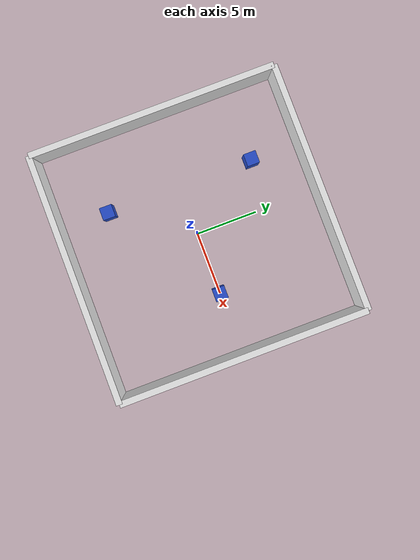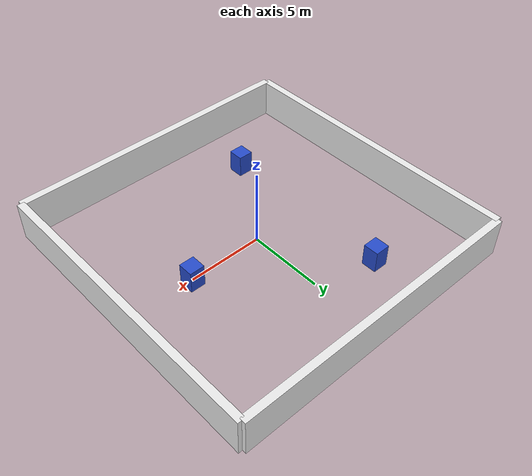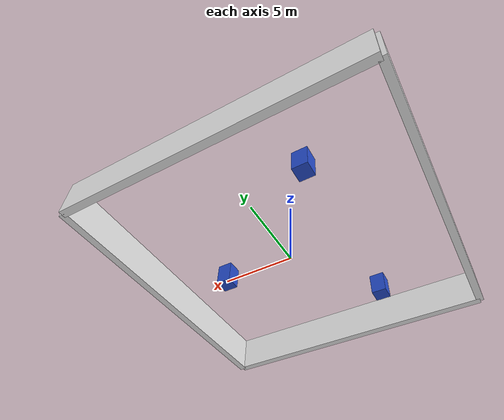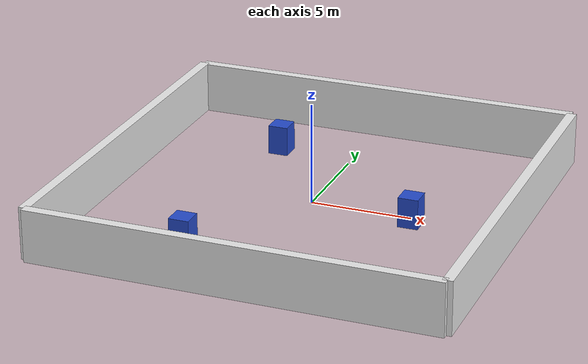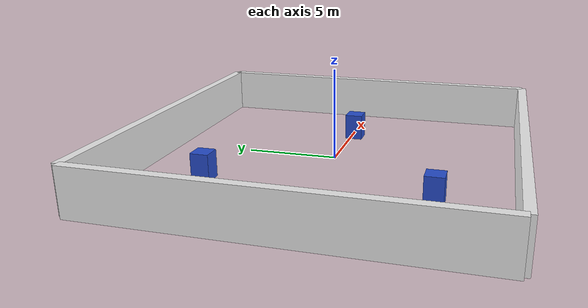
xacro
<?xml version="1.0"?>

<robot name="demo-1">

	<!-- dummy_link -->
	<link name="dummy_link">
		<inertial>
			<origin xyz="0 0 0" />
			<mass value="5.0" />
			<inertia ixx="0.0" ixy="0.0" ixz="0.0" iyy="0.0" iyz="0.0" izz="0.0" />
		</inertial>
		<visual>
			<origin xyz="0 0 0" />
			<geometry>
				<box size="0.00 0.00 0.00" />
			</geometry>
		</visual>
		<collision>
			<origin xyz="0 0 0" />
			<geometry>
				<box size="0.00 0.00 0.00" />
			</geometry>
		</collision>
	</link>

<!-- walls -->

	<!-- north_wall -->
	<link name="north_wall">
		<inertial>
			<origin xyz="0 0 0" />
			<mass value="5.0" />
			<inertia ixx="0.0" ixy="0.0" ixz="0.0" iyy="0.0" iyz="0.0" izz="0.0" />
		</inertial>
		<visual>
			<origin xyz="0 0 0" />
			<geometry>
				<box size="20 0.50 2.60" />
			</geometry>
		</visual>
		<collision>
			<origin xyz="0 0 0" />
			<geometry>
				<box size="20.02 0.53 2.62" />
			</geometry>
		</collision>
	</link>

	<joint name="joint_north_wall" type="fixed">
		<origin xyz="0 10 1" rpy="0 0 0" />
		<parent link="dummy_link" />
		<child link="north_wall" />
	</joint>

	<!-- east_wall -->
	<link name="east_wall">
		<inertial>
			<origin xyz="0 0 0" />
			<mass value="5.0" />
			<inertia ixx="0.0" ixy="0.0" ixz="0.0" iyy="0.0" iyz="0.0" izz="0.0" />
		</inertial>
		<visual>
			<origin xyz="0 0 0" />
			<geometry>
				<box size="0.50 20 2.60" />
			</geometry>
		</visual>
		<collision>
			<origin xyz="0 0 0" />
			<geometry>
				<box size="0.53 20.02 2.62" />
			</geometry>
		</collision>
	</link>

	<joint name="joint_east_wall" type="fixed">
		<origin xyz="10 0 1" rpy="0 0 0" />
		<parent link="dummy_link" />
		<child link="east_wall" />
	</joint>

	<!-- south_wall -->
	<link name="south_wall">
		<inertial>
			<origin xyz="0 0 0" />
			<mass value="5.0" />
			<inertia ixx="0.0" ixy="0.0" ixz="0.0" iyy="0.0" iyz="0.0" izz="0.0" />
		</inertial>
		<visual>
			<origin xyz="0 0 0" />
			<geometry>
				<box size="20 0.50 2.60" />
			</geometry>
		</visual>
		<collision>
			<origin xyz="0 0 0" />
			<geometry>
				<box size="20.2 0.53 2.62" />
			</geometry>
		</collision>
	</link>

	<joint name="joint_south_wall" type="fixed">
		<origin xyz="0 -10 1" rpy="0 0 0" />
		<parent link="dummy_link" />
		<child link="south_wall" />
	</joint>

	<!-- west_wall -->
	<link name="west_wall">
		<inertial>
			<origin xyz="0 0 0" />
			<mass value="5.0" />
			<inertia ixx="0.0" ixy="0.0" ixz="0.0" iyy="0.0" iyz="0.0" izz="0.0" />
		</inertial>
		<visual>
			<origin xyz="0 0 0" />
			<geometry>
				<box size="0.50 20 2.60" />
			</geometry>
		</visual>
		<collision>
			<origin xyz="0 0 0" />
			<geometry>
				<box size="0.52 20.02 2.62" />
			</geometry>
		</collision>
	</link>

	<joint name="joint_west_wall" type="fixed">
		<origin xyz="-10 0 1" rpy="0 0 0" />
		<parent link="dummy_link" />
		<child link="west_wall" />
	</joint>

<!-- Objects -->
	<!-- object_1 -->
	<link name="object_1">
		<inertial>
			<origin xyz="-4 6 0" />
			<mass value="5.0" />
			<inertia ixx="0.0" ixy="0.0" ixz="0.0" iyy="0.0" iyz="0.0" izz="0.0" />
		</inertial>
		<visual>
			<origin xyz="-4 6 0" />
			<geometry>
				<box size="1 1 1.5" />
			</geometry>
		</visual>
		<collision>
			<origin xyz="-4 6 0" />
			<geometry>
				<box size="1.02 1.02 1.52" />
			</geometry>
		</collision>
	</link>

	<gazebo reference="object_1">
	</gazebo>

	<joint name="joint_object_1" type="fixed">
		<origin xyz="0 0 0.45" rpy="0 0 0" />
		<parent link="dummy_link" />
		<child link="object_1" />
	</joint>

	<!-- object_2 -->
	<link name="object_2">
		<inertial>
			<origin xyz="-4 -6 0" />
			<mass value="5.0" />
			<inertia ixx="0.0" ixy="0.0" ixz="0.0" iyy="0.0" iyz="0.0" izz="0.0" />
		</inertial>
		<visual>
			<origin xyz="-4 -6 0" />
			<geometry>
				<box size="1 1 1.5" />
			</geometry>
		</visual>
		<collision>
			<origin xyz="-4 -6 0" />
			<geometry>
				<box size="1.02 1.02 1.52" />
			</geometry>
		</collision>
	</link>

	<joint name="joint_object_2" type="fixed">
		<origin xyz="0 0 0.45" rpy="0 0 0" />
		<parent link="dummy_link" />
		<child link="object_2" />
	</joint>

	<!-- object_3 -->
	<link name="object_3">
		<inertial>
			<origin xyz="5 0 0" />
			<mass value="5.0" />
			<inertia ixx="0.0" ixy="0.0" ixz="0.0" iyy="0.0" iyz="0.0" izz="0.0" />
		</inertial>
		<visual>
			<origin xyz="5 0 0" />
			<geometry>
				<box size="1 1 1.5" />
			</geometry>
		</visual>
		<collision>
			<origin xyz="5 0 0" />
			<geometry>
				<box size="1.02 1.02 1.52" />
			</geometry>
		</collision>
	</link>

	<joint name="joint_object_3" type="fixed">
		<origin xyz="0 0 0.45" rpy="0 0 0" />
		<parent link="dummy_link" />
		<child link="object_3" />
	</joint>

 <gazebo reference="north_wall">
	<material>Gazebo/White</material>
	<selfCollide>false</selfCollide>
 </gazebo>
 <gazebo reference="south_wall">
	<material>Gazebo/White</material>
	<selfCollide>false</selfCollide>
 </gazebo>
 <gazebo reference="east_wall">
	<material>Gazebo/White</material>
	<selfCollide>false</selfCollide>
 </gazebo>
 <gazebo reference="west_wall">
	<material>Gazebo/White</material>
	<selfCollide>false</selfCollide>
 </gazebo>
 <gazebo reference="object_1">
	<material>Gazebo/Blue</material>
	<selfCollide>false</selfCollide>
 </gazebo>
 <gazebo reference="object_2">
	<material>Gazebo/Blue</material>
	<selfCollide>false</selfCollide>
 </gazebo>
 <gazebo reference="object_3">
	<material>Gazebo/Blue</material>
	<selfCollide>false</selfCollide>
 </gazebo>

</robot>
